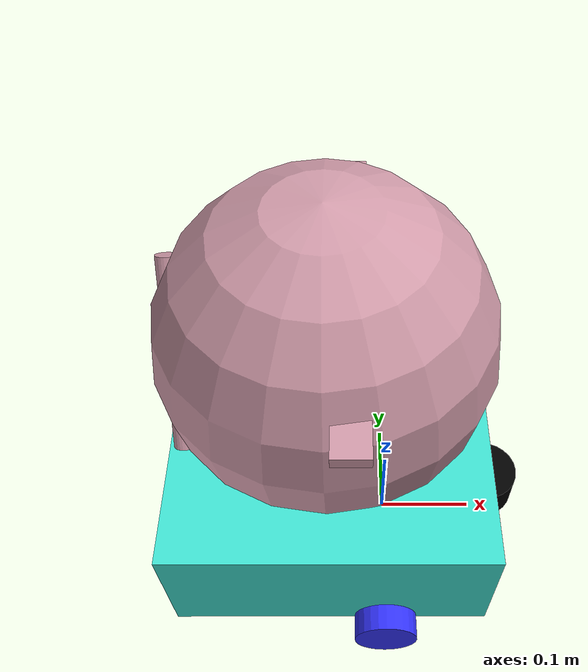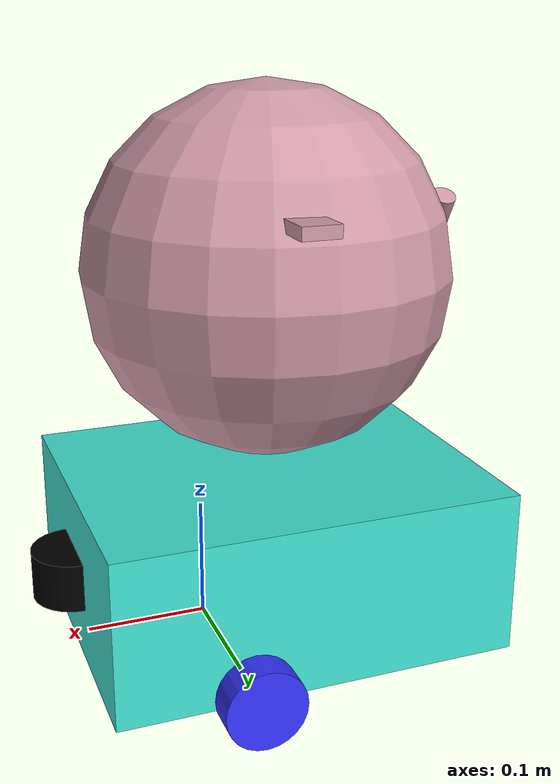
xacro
<?xml version="1.0"?>
<robot name="robot" xmlns:xacro="http://ros.org/wiki/xacro">

  <xacro:include filename="$(find robot_description)/urdf/gazebo.urdf.xacro" />

  <!-- ---------------- Параметры ---------------- -->
  <xacro:property name="chassis_length" value="0.335" />
  <xacro:property name="chassis_width"  value="0.265" />
  <xacro:property name="chassis_height" value="0.138" />
  <xacro:property name="wheel_radius"   value="0.033"/>
  <xacro:property name="wheel_thickness" value="0.026"/>
  <xacro:property name="wheel_mass"     value="0.05"/>
  <xacro:property name="wheel_offset_x" value="0.226"/>
  <xacro:property name="wheel_offset_y" value="0.1485"/>
  <xacro:property name="wheel_offset_z" value="0.01"/>
  <xacro:property name="caster_wheel_radius" value="0.03" />
  <xacro:property name="caster_wheel_mass"   value="0.01" />
  <xacro:property name="caster_wheel_offset_x" value="0.075" />
  <xacro:property name="caster_wheel_offset_z"
                  value="${wheel_offset_z - wheel_radius + caster_wheel_radius}" />
  <xacro:property name="mass" value="1.0" />

  <xacro:property name="laser_radius" value="0.035" />
  <xacro:property name="laser_length" value="0.04" />

  <!-- ---------------- Материалы ---------------- -->
  <material name="white">
    <color rgba="0.71 0.75 1 1" />
  </material>

  <material name="rose">
    <color rgba="0.812 0.604 0.659 1" />
  </material>

  <material name="orange">
    <color rgba="0.25 0.88 0.82 1" />
  </material>

  <material name="blue">
    <color rgba="0.2 0.2 1 1"/>
  </material>

  <material name="black">
    <color rgba="0 0 0 1" />
  </material>

  <material name="red">
    <color rgba="1 0 0 1" />
  </material>

  <!-- ---------------- Базовые ссылки ---------------- -->
  <link name="base_link"/>
  <link name="base_footprint"/>

  <joint name="base_footprint_joint" type="fixed">
    <parent link="base_link" />
    <child link="base_footprint" />
    <origin xyz="0 0 -0.138" rpy="0 0 0" />
  </joint>

  <!-- ---------------- Корпус ---------------- -->
  <joint name="chassis_joint" type="fixed">
    <parent link="base_link" />
    <child link="chassis" />
    <origin xyz="${-wheel_offset_x} 0 ${-wheel_offset_z}" />
  </joint>

  <link name="chassis">
    <inertial>
      <origin xyz="${chassis_length/2} 0 ${chassis_height/2}" rpy="0 0 0" />
      <mass value="${mass}" />
      <inertia ixx="${(1/12) * mass * (chassis_width*chassis_width+chassis_height*chassis_height)}"
               ixy="0.0" ixz="0.0"
               iyy="${(1/12) * mass * (chassis_length*chassis_length+chassis_height*chassis_height)}"
               iyz="0.0"
               izz="${(1/12) * mass * (chassis_length*chassis_length+chassis_width*chassis_width)}" />
    </inertial>
    <visual>
      <origin xyz="${chassis_length/2} 0 ${chassis_height/2}" />
      <geometry>
        <box size="${chassis_length} ${chassis_width} ${chassis_height}" />
      </geometry>
      <material name="orange" />
    </visual>
    <collision>
      <origin xyz="${chassis_length/2} 0 ${chassis_height/2}" />
      <geometry>
        <box size="${chassis_length} ${chassis_width} ${chassis_height}" />
      </geometry>
    </collision>
  </link>

  <gazebo reference="chassis">
    <material>Gazebo/SeaGreen</material>
  </gazebo>

  <!-- ---------------- Левые/правые колёса ---------------- -->
  <joint name="left_wheel_joint" type="continuous">
    <parent link="base_link" />
    <child link="left_wheel" />
    <origin xyz="0 ${wheel_offset_y} 0" rpy="-${pi/2} 0 0" />
    <axis xyz="0 0 1" />
  </joint>

  <link name="left_wheel">
    <visual>
      <geometry>
        <cylinder radius="${wheel_radius}" length="${wheel_thickness}"/>
      </geometry>
      <material name="blue"/>
    </visual>
    <collision>
      <geometry>
        <sphere radius="${wheel_radius}"/>
      </geometry>
    </collision>
    <inertial>
      <origin xyz="0 0 0" rpy="0 0 0"/>
      <mass value="${wheel_mass}" />
      <inertia ixx="${(1/12) * wheel_mass * (3*wheel_radius*wheel_radius + wheel_thickness*wheel_thickness)}"
               ixy="0.0" ixz="0.0"
               iyy="${(1/12) * wheel_mass * (3*wheel_radius*wheel_radius + wheel_thickness*wheel_thickness)}"
               iyz="0.0"
               izz="${(1/2) * wheel_mass * (wheel_radius*wheel_radius)}" />
    </inertial>
  </link>

  <gazebo reference="left_wheel">
    <material>Gazebo/Blue</material>
  </gazebo>

  <joint name="right_wheel_joint" type="continuous">
    <parent link="base_link" />
    <child link="right_wheel" />
    <origin xyz="0 ${-wheel_offset_y} 0" rpy="${pi/2} 0 0" />
    <axis xyz="0 0 -1" />
  </joint>

  <link name="right_wheel">
    <visual>
      <geometry>
        <cylinder radius="${wheel_radius}" length="${wheel_thickness}"/>
      </geometry>
      <material name="blue"/>
    </visual>
    <collision>
      <geometry>
        <sphere radius="${wheel_radius}"/>
      </geometry>
    </collision>
    <inertial>
      <origin xyz="0 0 0" rpy="0 0 0"/>
      <mass value="${wheel_mass}" />
      <inertia ixx="${(1/12) * wheel_mass * (3*wheel_radius*wheel_radius + wheel_thickness*wheel_thickness)}"
               ixy="0.0" ixz="0.0"
               iyy="${(1/12) * wheel_mass * (3*wheel_radius*wheel_radius + wheel_thickness*wheel_thickness)}"
               iyz="0.0"
               izz="${(1/2) * wheel_mass * (wheel_radius*wheel_radius)}" />
    </inertial>
  </link>

  <gazebo reference="right_wheel">
    <material>Gazebo/Blue</material>
  </gazebo>

  <!-- ---------------- Опорное колесо ---------------- -->
  <joint name="caster_wheel_joint" type="fixed">
    <parent link="chassis" />
    <child link="caster_wheel" />
    <origin xyz="${caster_wheel_offset_x} 0 ${caster_wheel_offset_z}" />
  </joint>

  <link name="caster_wheel">
    <visual>
      <geometry>
        <sphere radius="${caster_wheel_radius}" />
      </geometry>
      <material name="white" />
    </visual>
    <collision>
      <geometry>
        <sphere radius="${caster_wheel_radius}" />
      </geometry>
    </collision>
    <inertial>
      <origin xyz="0 0 0" rpy="0 0 0" />
      <mass value="${caster_wheel_mass}" />
      <inertia ixx="${(2/5) * caster_wheel_mass * (caster_wheel_radius*caster_wheel_radius)}"
               ixy="0.0" ixz="0.0"
               iyy="${(2/5) * caster_wheel_mass * (caster_wheel_radius*caster_wheel_radius)}"
               iyz="0.0"
               izz="${(2/5) * caster_wheel_mass * (caster_wheel_radius*caster_wheel_radius)}" />
    </inertial>
  </link>

  <gazebo reference="caster_wheel">
    <material>Gazebo/White</material>
    <mu1 value="0.001" />
    <mu2 value="0.001" />
  </gazebo>

  <!-- ---------------- Голова-питомец (сфера) ---------------- -->
  <link name="body_sphere">
    <visual>
      <origin xyz="${chassis_length/2} 0 ${chassis_height + 0.17}" rpy="0 0 0"/>
      <geometry>
        <sphere radius="0.15"/>
      </geometry>
      <material name="rose"/>
    </visual>
    <collision>
      <origin xyz="${chassis_length/2} 0 ${chassis_height + 0.17}" rpy="0 0 0"/>
      <geometry>
        <sphere radius="0.15"/>
      </geometry>
    </collision>
    <inertial>
      <mass value="0.5"/>
      <origin xyz="${chassis_length/2} 0 ${chassis_height + 0.17}" rpy="0 0 0"/>
      <inertia ixx="0.02" ixy="0" ixz="0" iyy="0.02" iyz="0" izz="0.02"/>
    </inertial>
  </link>

  <joint name="body_sphere_joint" type="fixed">
    <parent link="chassis"/>
    <child link="body_sphere"/>
    <origin xyz="0 0 0" rpy="0 0 0"/>
  </joint>

  <gazebo reference="body_sphere">
    <material>Gazebo/Rose</material>
  </gazebo>

  <!-- ---------------- Ушки ---------------- -->
  <link name="ear_left">
    <visual>
      <origin xyz="${chassis_length/2 + 0.02} 0.12 ${chassis_height + 0.23}" rpy="0 0 0"/>
      <geometry>
        <box size="0.03 0.08 0.01"/>
      </geometry>
      <material name="rose"/>
    </visual>
  </link>

  <joint name="ear_left_joint" type="fixed">
    <parent link="body_sphere"/>
    <child link="ear_left"/>
    <origin xyz="0 0 0" rpy="0 0 0"/>
  </joint>

  <link name="ear_right">
    <visual>
      <origin xyz="${chassis_length/2 + 0.02} -0.12 ${chassis_height + 0.23}" rpy="0 0 0"/>
      <geometry>
        <box size="0.03 0.08 0.01"/>
      </geometry>
      <material name="rose"/>
    </visual>
  </link>

  <joint name="ear_right_joint" type="fixed">
    <parent link="body_sphere"/>
    <child link="ear_right"/>
    <origin xyz="0 0 0" rpy="0 0 0"/>
  </joint>

  <!-- ---------------- Хвост ---------------- -->
  <link name="tail">
    <visual>
      <origin xyz="${chassis_length*0.1} 0 ${chassis_height + 0.15}" rpy="${-pi/6} 0 0"/>
      <geometry>
        <cylinder radius="0.01" length="0.18"/>
      </geometry>
      <material name="rose"/>
    </visual>
  </link>

  <joint name="tail_joint" type="fixed">
    <parent link="chassis"/>
    <child link="tail"/>
    <origin xyz="0 0 0" rpy="0 0 0"/>
  </joint>

  <!-- ---------------- Глаза-экраны и рот ---------------- -->
  <link name="eye_screen_left">
    <visual>
      <origin xyz="${chassis_length - 0.02} 0.05 ${chassis_height*0.7}" rpy="0 ${pi/2} 0"/>
      <geometry>
        <box size="0.02 0.05 0.03"/>
      </geometry>
      <material name="white"/>
    </visual>
  </link>

  <joint name="eye_screen_left_joint" type="fixed">
    <parent link="chassis"/>
    <child link="eye_screen_left"/>
    <origin xyz="0 0 0" rpy="0 0 0"/>
  </joint>

  <link name="eye_screen_right">
    <visual>
      <origin xyz="${chassis_length - 0.02} -0.05 ${chassis_height*0.7}" rpy="0 ${pi/2} 0"/>
      <geometry>
        <box size="0.02 0.05 0.03"/>
      </geometry>
      <material name="white"/>
    </visual>
  </link>

  <joint name="eye_screen_right_joint" type="fixed">
    <parent link="chassis"/>
    <child link="eye_screen_right"/>
    <origin xyz="0 0 0" rpy="0 0 0"/>
  </joint>

  <link name="mouth_screen">
    <visual>
      <origin xyz="${chassis_length - 0.021} 0 ${chassis_height*0.45}" rpy="0 ${pi/2} 0"/>
      <geometry>
        <box size="0.018 0.08 0.015"/>
      </geometry>
      <material name="black"/>
    </visual>
  </link>

  <joint name="mouth_screen_joint" type="fixed">
    <parent link="chassis"/>
    <child link="mouth_screen"/>
    <origin xyz="0 0 0" rpy="0 0 0"/>
  </joint>

  <!-- ---------------- Лидар (нос) ---------------- -->
  <link name="laser_frame">
    <visual>
      <geometry>
        <cylinder radius="${laser_radius}" length="${laser_length}" />
      </geometry>
      <material name="black" />
    </visual>
    <collision>
      <geometry>
        <cylinder radius="${laser_radius}" length="${laser_length}" />
      </geometry>
    </collision>
    <inertial>
      <mass value="0.1" />
      <inertia ixx="1e-3" ixy="0" ixz="0" iyy="1e-3" iyz="0" izz="1e-3" />
    </inertial>
  </link>

  <joint name="laser_joint" type="fixed">
    <parent link="chassis" />
    <child link="laser_frame" />
    <origin xyz="${chassis_length} 0 ${chassis_height/2}" rpy="0 0 0" />
  </joint>

  <gazebo reference="laser_frame">
    <sensor name="laser_frame" type="gpu_lidar">
      <topic>scan</topic>
      <pose relative_to="laser_frame">0 0 0 0 0 0</pose>
      <update_rate>5</update_rate>
      <ray>
        <scan>
          <horizontal>
            <samples>50</samples>
            <resolution>1</resolution>
            <min_angle>-1.396263</min_angle>
            <max_angle>1.396263</max_angle>
          </horizontal>
          <vertical>
            <samples>20</samples>
            <resolution>1</resolution>
            <min_angle>-0.65</min_angle>
            <max_angle>0.65</max_angle>
          </vertical>
        </scan>
        <range>
          <min>0.08</min>
          <max>10.0</max>
          <resolution>0.01</resolution>
        </range>
      </ray>
      <always_on>1</always_on>
      <visualize>true</visualize>
    </sensor>
  </gazebo>

</robot>
